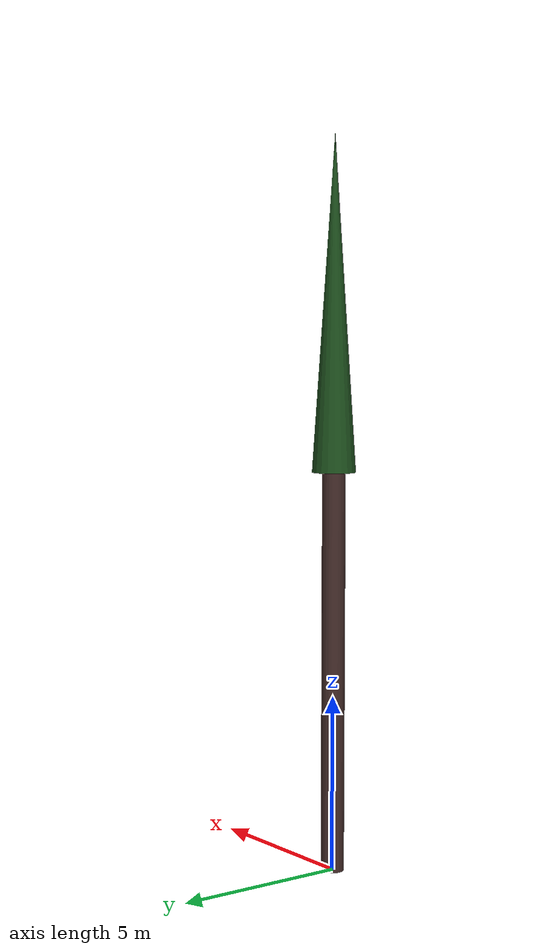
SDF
<?xml version="1.0" ?>
<sdf version="1.10">
  <model name="cypres_provence_01">
    <static>true</static>

    <!-- Tronc -->
    <link name="trunk">
      <pose>0 0 5.666754430432304 0 0 0</pose>
      <visual name="trunk_visual">
        <geometry>
          <cylinder>
            <radius>0.3274885477503443</radius>
            <length>11.333508860864608</length>
          </cylinder>
        </geometry>
        <material>
          <ambient>0.24 0.15 0.14 1</ambient>
          <diffuse>0.24 0.15 0.14 1</diffuse>
          <specular>0.1 0.1 0.1 1</specular>
        </material>
      </visual>
      <collision name="trunk_collision">
        <geometry>
          <cylinder>
            <radius>0.3274885477503443</radius>
            <length>11.333508860864608</length>
          </cylinder>
        </geometry>
      </collision>
    </link>

    <!-- Feuillage -->
    <link name="crown">
      <pose>0 0 15.964320653800959 0 0 0</pose>
      <visual name="crown_visual">
        <geometry>
          <cone>
              <radius>0.6089161265664436</radius>
              <length>9.261623585872702</length>
            </cone>
        </geometry>
        <material>
          <ambient>0.10 0.29 0.10 1</ambient>
          <diffuse>0.10 0.29 0.10 1</diffuse>
          <specular>0.1 0.1 0.1 1</specular>
        </material>
      </visual>
      <collision name="crown_collision">
        <geometry>
          <sphere>
            <radius>0.4871329012531549</radius>
          </sphere>
        </geometry>
      </collision>
    </link>

    <!-- Joint tronc-feuillage -->
    <joint name="trunk_crown_joint" type="fixed">
      <parent>trunk</parent>
      <child>crown</child>
    </joint>

  </model>
</sdf>
